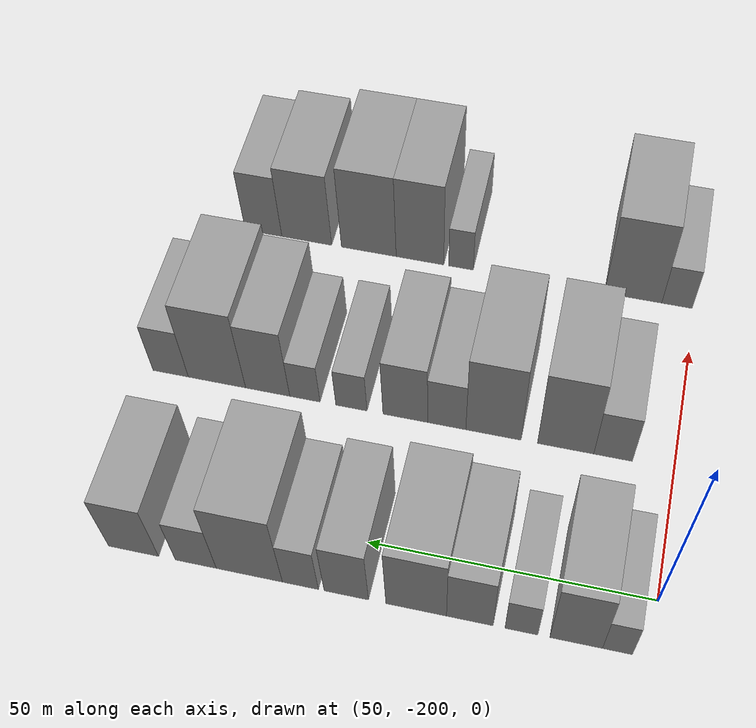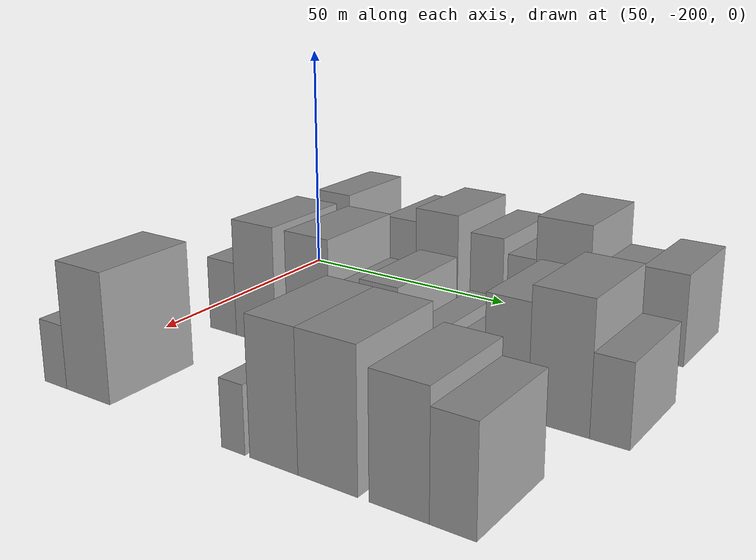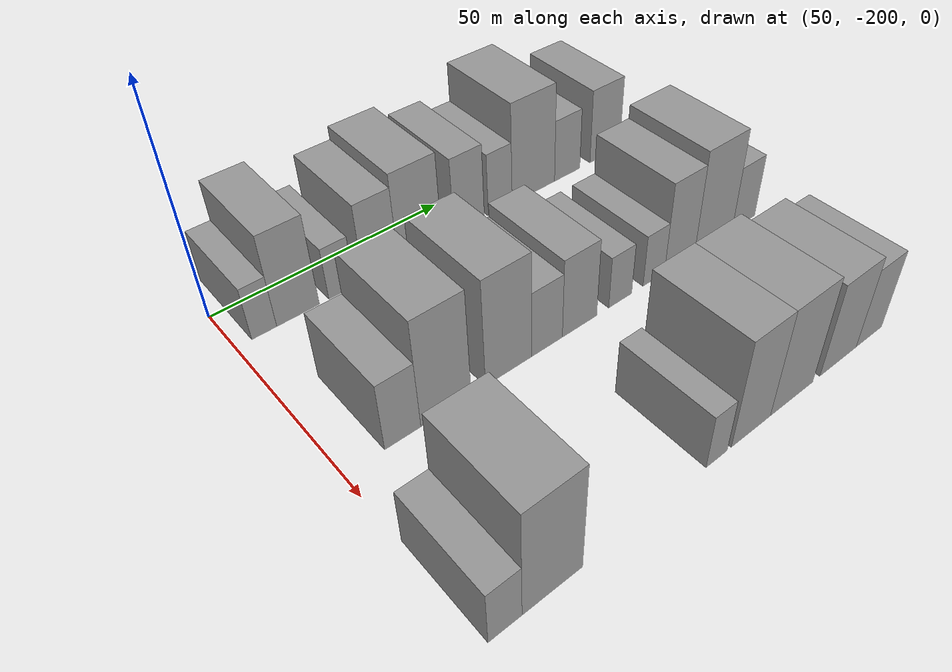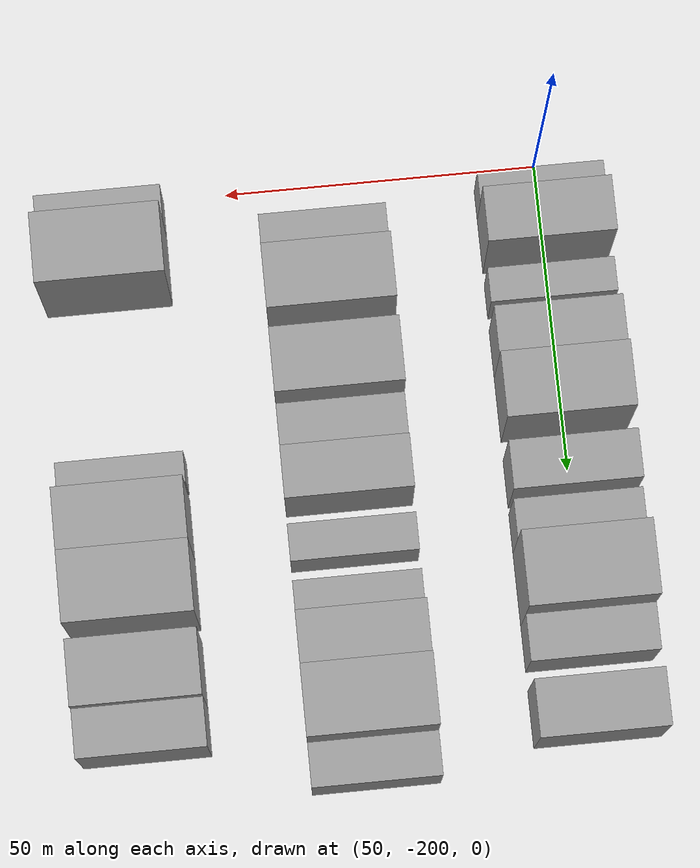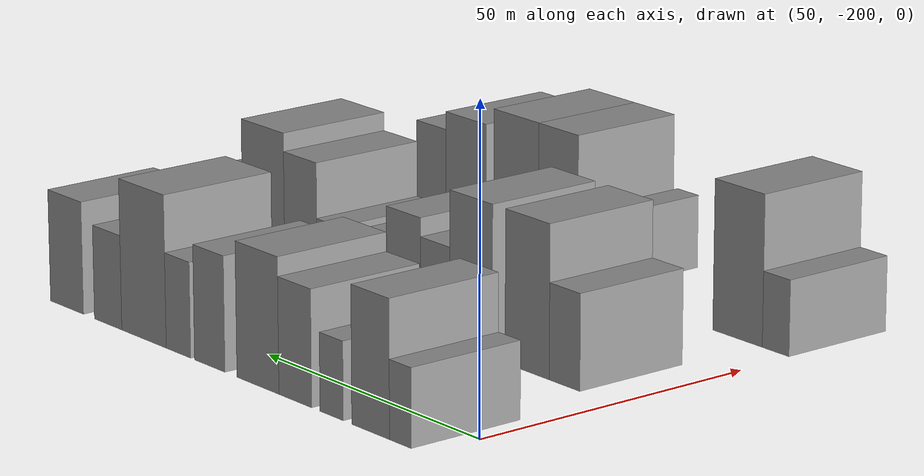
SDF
<sdf version="1.6">
 <world name="default">
  <model name="building_19">
   <static>1</static>
   <pose>50.0000 -194.4160 0 0.000000 0.000000 0.000000</pose>
   <link name="link">
    <pose>0 0 6.00 0 0 0</pose>
    <collision name="collision"><geometry><box><size>20.0000 4.9338 12.0000</size></box></geometry></collision>
    <visual name="visual">
     <cast_shadows>0</cast_shadows>
     <geometry><box><size>20.0000 4.9338 12.0000</size></box></geometry>
     <material>
      <script>
       <uri>model://grey_wall/materials/scripts</uri>
       <uri>model://grey_wall/materials/textures</uri>
       <name>vrc/grey_wall</name>
      </script>
     </material>
    </visual>
   </link>
  </model>
  <model name="building_20">
   <static>1</static>
   <pose>50.0000 -187.5790 0 0.000000 0.000000 0.000000</pose>
   <link name="link">
    <pose>0 0 10.50 0 0 0</pose>
    <collision name="collision"><geometry><box><size>20.0000 8.7402 21.0000</size></box></geometry></collision>
    <visual name="visual">
     <cast_shadows>0</cast_shadows>
     <geometry><box><size>20.0000 8.7402 21.0000</size></box></geometry>
     <material>
      <script>
       <uri>model://grey_wall/materials/scripts</uri>
       <uri>model://grey_wall/materials/textures</uri>
       <name>vrc/grey_wall</name>
      </script>
     </material>
    </visual>
   </link>
  </model>
  <model name="building_21">
   <static>1</static>
   <pose>50.0000 -178.4539 0 0.000000 0.000000 0.000000</pose>
   <link name="link">
    <pose>0 0 6.00 0 0 0</pose>
    <collision name="collision"><geometry><box><size>20.0000 5.5102 12.0000</size></box></geometry></collision>
    <visual name="visual">
     <cast_shadows>0</cast_shadows>
     <geometry><box><size>20.0000 5.5102 12.0000</size></box></geometry>
     <material>
      <script>
       <uri>model://grey_wall/materials/scripts</uri>
       <uri>model://grey_wall/materials/textures</uri>
       <name>vrc/grey_wall</name>
      </script>
     </material>
    </visual>
   </link>
  </model>
  <model name="building_22">
   <static>1</static>
   <pose>50.0000 -169.7559 0 0.000000 0.000000 0.000000</pose>
   <link name="link">
    <pose>0 0 9.00 0 0 0</pose>
    <collision name="collision"><geometry><box><size>20.0000 7.8857 18.0000</size></box></geometry></collision>
    <visual name="visual">
     <cast_shadows>0</cast_shadows>
     <geometry><box><size>20.0000 7.8857 18.0000</size></box></geometry>
     <material>
      <script>
       <uri>model://grey_wall/materials/scripts</uri>
       <uri>model://grey_wall/materials/textures</uri>
       <name>vrc/grey_wall</name>
      </script>
     </material>
    </visual>
   </link>
  </model>
  <model name="building_23">
   <static>1</static>
   <pose>50.0000 -160.6477 0 0.000000 0.000000 0.000000</pose>
   <link name="link">
    <pose>0 0 10.50 0 0 0</pose>
    <collision name="collision"><geometry><box><size>20.0000 10.3306 21.0000</size></box></geometry></collision>
    <visual name="visual">
     <cast_shadows>0</cast_shadows>
     <geometry><box><size>20.0000 10.3306 21.0000</size></box></geometry>
     <material>
      <script>
       <uri>model://grey_wall/materials/scripts</uri>
       <uri>model://grey_wall/materials/textures</uri>
       <name>vrc/grey_wall</name>
      </script>
     </material>
    </visual>
   </link>
  </model>
  <model name="building_24">
   <static>1</static>
   <pose>50.0000 -148.6512 0 0.000000 0.000000 0.000000</pose>
   <link name="link">
    <pose>0 0 9.00 0 0 0</pose>
    <collision name="collision"><geometry><box><size>20.0000 7.6624 18.0000</size></box></geometry></collision>
    <visual name="visual">
     <cast_shadows>0</cast_shadows>
     <geometry><box><size>20.0000 7.6624 18.0000</size></box></geometry>
     <material>
      <script>
       <uri>model://grey_wall/materials/scripts</uri>
       <uri>model://grey_wall/materials/textures</uri>
       <name>vrc/grey_wall</name>
      </script>
     </material>
    </visual>
   </link>
  </model>
  <model name="building_25">
   <static>1</static>
   <pose>50.0000 -140.6782 0 0.000000 0.000000 0.000000</pose>
   <link name="link">
    <pose>0 0 7.50 0 0 0</pose>
    <collision name="collision"><geometry><box><size>20.0000 6.2836 15.0000</size></box></geometry></collision>
    <visual name="visual">
     <cast_shadows>0</cast_shadows>
     <geometry><box><size>20.0000 6.2836 15.0000</size></box></geometry>
     <material>
      <script>
       <uri>model://grey_wall/materials/scripts</uri>
       <uri>model://grey_wall/materials/textures</uri>
       <name>vrc/grey_wall</name>
      </script>
     </material>
    </visual>
   </link>
  </model>
  <model name="building_26">
   <static>1</static>
   <pose>50.0000 -131.7145 0 0.000000 0.000000 0.000000</pose>
   <link name="link">
    <pose>0 0 12.00 0 0 0</pose>
    <collision name="collision"><geometry><box><size>20.0000 11.6438 24.0000</size></box></geometry></collision>
    <visual name="visual">
     <cast_shadows>0</cast_shadows>
     <geometry><box><size>20.0000 11.6438 24.0000</size></box></geometry>
     <material>
      <script>
       <uri>model://grey_wall/materials/scripts</uri>
       <uri>model://grey_wall/materials/textures</uri>
       <name>vrc/grey_wall</name>
      </script>
     </material>
    </visual>
   </link>
  </model>
  <model name="building_27">
   <static>1</static>
   <pose>50.0000 -122.2554 0 0.000000 0.000000 0.000000</pose>
   <link name="link">
    <pose>0 0 7.50 0 0 0</pose>
    <collision name="collision"><geometry><box><size>20.0000 7.2743 15.0000</size></box></geometry></collision>
    <visual name="visual">
     <cast_shadows>0</cast_shadows>
     <geometry><box><size>20.0000 7.2743 15.0000</size></box></geometry>
     <material>
      <script>
       <uri>model://grey_wall/materials/scripts</uri>
       <uri>model://grey_wall/materials/textures</uri>
       <name>vrc/grey_wall</name>
      </script>
     </material>
    </visual>
   </link>
  </model>
  <model name="building_28">
   <static>1</static>
   <pose>50.0000 -111.1314 0 0.000000 0.000000 0.000000</pose>
   <link name="link">
    <pose>0 0 9.00 0 0 0</pose>
    <collision name="collision"><geometry><box><size>20.0000 8.9738 18.0000</size></box></geometry></collision>
    <visual name="visual">
     <cast_shadows>0</cast_shadows>
     <geometry><box><size>20.0000 8.9738 18.0000</size></box></geometry>
     <material>
      <script>
       <uri>model://grey_wall/materials/scripts</uri>
       <uri>model://grey_wall/materials/textures</uri>
       <name>vrc/grey_wall</name>
      </script>
     </material>
    </visual>
   </link>
  </model>
  <model name="building_96">
   <static>1</static>
   <pose>85.0000 -188.9728 0 0.000000 0.000000 0.000000</pose>
   <link name="link">
    <pose>0 0 7.50 0 0 0</pose>
    <collision name="collision"><geometry><box><size>20.0000 6.9607 15.0000</size></box></geometry></collision>
    <visual name="visual">
     <cast_shadows>0</cast_shadows>
     <geometry><box><size>20.0000 6.9607 15.0000</size></box></geometry>
     <material>
      <script>
       <uri>model://grey_wall/materials/scripts</uri>
       <uri>model://grey_wall/materials/textures</uri>
       <name>vrc/grey_wall</name>
      </script>
     </material>
    </visual>
   </link>
  </model>
  <model name="building_97">
   <static>1</static>
   <pose>85.0000 -180.3932 0 0.000000 0.000000 0.000000</pose>
   <link name="link">
    <pose>0 0 12.00 0 0 0</pose>
    <collision name="collision"><geometry><box><size>20.0000 10.1984 24.0000</size></box></geometry></collision>
    <visual name="visual">
     <cast_shadows>0</cast_shadows>
     <geometry><box><size>20.0000 10.1984 24.0000</size></box></geometry>
     <material>
      <script>
       <uri>model://grey_wall/materials/scripts</uri>
       <uri>model://grey_wall/materials/textures</uri>
       <name>vrc/grey_wall</name>
      </script>
     </material>
    </visual>
   </link>
  </model>
  <model name="building_98">
   <static>1</static>
   <pose>85.0000 -167.2130 0 0.000000 0.000000 0.000000</pose>
   <link name="link">
    <pose>0 0 12.00 0 0 0</pose>
    <collision name="collision"><geometry><box><size>20.0000 10.1621 24.0000</size></box></geometry></collision>
    <visual name="visual">
     <cast_shadows>0</cast_shadows>
     <geometry><box><size>20.0000 10.1621 24.0000</size></box></geometry>
     <material>
      <script>
       <uri>model://grey_wall/materials/scripts</uri>
       <uri>model://grey_wall/materials/textures</uri>
       <name>vrc/grey_wall</name>
      </script>
     </material>
    </visual>
   </link>
  </model>
  <model name="building_99">
   <static>1</static>
   <pose>85.0000 -158.5854 0 0.000000 0.000000 0.000000</pose>
   <link name="link">
    <pose>0 0 7.50 0 0 0</pose>
    <collision name="collision"><geometry><box><size>20.0000 7.0930 15.0000</size></box></geometry></collision>
    <visual name="visual">
     <cast_shadows>0</cast_shadows>
     <geometry><box><size>20.0000 7.0930 15.0000</size></box></geometry>
     <material>
      <script>
       <uri>model://grey_wall/materials/scripts</uri>
       <uri>model://grey_wall/materials/textures</uri>
       <name>vrc/grey_wall</name>
      </script>
     </material>
    </visual>
   </link>
  </model>
  <model name="building_100">
   <static>1</static>
   <pose>85.0000 -150.8877 0 0.000000 0.000000 0.000000</pose>
   <link name="link">
    <pose>0 0 9.00 0 0 0</pose>
    <collision name="collision"><geometry><box><size>20.0000 8.3025 18.0000</size></box></geometry></collision>
    <visual name="visual">
     <cast_shadows>0</cast_shadows>
     <geometry><box><size>20.0000 8.3025 18.0000</size></box></geometry>
     <material>
      <script>
       <uri>model://grey_wall/materials/scripts</uri>
       <uri>model://grey_wall/materials/textures</uri>
       <name>vrc/grey_wall</name>
      </script>
     </material>
    </visual>
   </link>
  </model>
  <model name="building_101">
   <static>1</static>
   <pose>85.0000 -140.7984 0 0.000000 0.000000 0.000000</pose>
   <link name="link">
    <pose>0 0 6.00 0 0 0</pose>
    <collision name="collision"><geometry><box><size>20.0000 5.8761 12.0000</size></box></geometry></collision>
    <visual name="visual">
     <cast_shadows>0</cast_shadows>
     <geometry><box><size>20.0000 5.8761 12.0000</size></box></geometry>
     <material>
      <script>
       <uri>model://grey_wall/materials/scripts</uri>
       <uri>model://grey_wall/materials/textures</uri>
       <name>vrc/grey_wall</name>
      </script>
     </material>
    </visual>
   </link>
  </model>
  <model name="building_102">
   <static>1</static>
   <pose>85.0000 -131.9815 0 0.000000 0.000000 0.000000</pose>
   <link name="link">
    <pose>0 0 6.00 0 0 0</pose>
    <collision name="collision"><geometry><box><size>20.0000 5.7577 12.0000</size></box></geometry></collision>
    <visual name="visual">
     <cast_shadows>0</cast_shadows>
     <geometry><box><size>20.0000 5.7577 12.0000</size></box></geometry>
     <material>
      <script>
       <uri>model://grey_wall/materials/scripts</uri>
       <uri>model://grey_wall/materials/textures</uri>
       <name>vrc/grey_wall</name>
      </script>
     </material>
    </visual>
   </link>
  </model>
  <model name="building_103">
   <static>1</static>
   <pose>85.0000 -124.8786 0 0.000000 0.000000 0.000000</pose>
   <link name="link">
    <pose>0 0 10.50 0 0 0</pose>
    <collision name="collision"><geometry><box><size>20.0000 8.4482 21.0000</size></box></geometry></collision>
    <visual name="visual">
     <cast_shadows>0</cast_shadows>
     <geometry><box><size>20.0000 8.4482 21.0000</size></box></geometry>
     <material>
      <script>
       <uri>model://grey_wall/materials/scripts</uri>
       <uri>model://grey_wall/materials/textures</uri>
       <name>vrc/grey_wall</name>
      </script>
     </material>
    </visual>
   </link>
  </model>
  <model name="building_104">
   <static>1</static>
   <pose>85.0000 -115.1177 0 0.000000 0.000000 0.000000</pose>
   <link name="link">
    <pose>0 0 12.00 0 0 0</pose>
    <collision name="collision"><geometry><box><size>20.0000 11.0736 24.0000</size></box></geometry></collision>
    <visual name="visual">
     <cast_shadows>0</cast_shadows>
     <geometry><box><size>20.0000 11.0736 24.0000</size></box></geometry>
     <material>
      <script>
       <uri>model://grey_wall/materials/scripts</uri>
       <uri>model://grey_wall/materials/textures</uri>
       <name>vrc/grey_wall</name>
      </script>
     </material>
    </visual>
   </link>
  </model>
  <model name="building_105">
   <static>1</static>
   <pose>85.0000 -106.1394 0 0.000000 0.000000 0.000000</pose>
   <link name="link">
    <pose>0 0 7.50 0 0 0</pose>
    <collision name="collision"><geometry><box><size>20.0000 6.8830 15.0000</size></box></geometry></collision>
    <visual name="visual">
     <cast_shadows>0</cast_shadows>
     <geometry><box><size>20.0000 6.8830 15.0000</size></box></geometry>
     <material>
      <script>
       <uri>model://grey_wall/materials/scripts</uri>
       <uri>model://grey_wall/materials/textures</uri>
       <name>vrc/grey_wall</name>
      </script>
     </material>
    </visual>
   </link>
  </model>
  <model name="building_167">
   <static>1</static>
   <pose>120.0000 -196.6678 0 0.000000 0.000000 0.000000</pose>
   <link name="link">
    <pose>0 0 6.00 0 0 0</pose>
    <collision name="collision"><geometry><box><size>20.0000 5.8931 12.0000</size></box></geometry></collision>
    <visual name="visual">
     <cast_shadows>0</cast_shadows>
     <geometry><box><size>20.0000 5.8931 12.0000</size></box></geometry>
     <material>
      <script>
       <uri>model://grey_wall/materials/scripts</uri>
       <uri>model://grey_wall/materials/textures</uri>
       <name>vrc/grey_wall</name>
      </script>
     </material>
    </visual>
   </link>
  </model>
  <model name="building_168">
   <static>1</static>
   <pose>120.0000 -188.1610 0 0.000000 0.000000 0.000000</pose>
   <link name="link">
    <pose>0 0 12.00 0 0 0</pose>
    <collision name="collision"><geometry><box><size>20.0000 11.1206 24.0000</size></box></geometry></collision>
    <visual name="visual">
     <cast_shadows>0</cast_shadows>
     <geometry><box><size>20.0000 11.1206 24.0000</size></box></geometry>
     <material>
      <script>
       <uri>model://grey_wall/materials/scripts</uri>
       <uri>model://grey_wall/materials/textures</uri>
       <name>vrc/grey_wall</name>
      </script>
     </material>
    </visual>
   </link>
  </model>
  <model name="building_169">
   <static>1</static>
   <pose>120.0000 -154.2214 0 0.000000 0.000000 0.000000</pose>
   <link name="link">
    <pose>0 0 6.00 0 0 0</pose>
    <collision name="collision"><geometry><box><size>20.0000 4.9195 12.0000</size></box></geometry></collision>
    <visual name="visual">
     <cast_shadows>0</cast_shadows>
     <geometry><box><size>20.0000 4.9195 12.0000</size></box></geometry>
     <material>
      <script>
       <uri>model://grey_wall/materials/scripts</uri>
       <uri>model://grey_wall/materials/textures</uri>
       <name>vrc/grey_wall</name>
      </script>
     </material>
    </visual>
   </link>
  </model>
  <model name="building_170">
   <static>1</static>
   <pose>120.0000 -145.9594 0 0.000000 0.000000 0.000000</pose>
   <link name="link">
    <pose>0 0 12.00 0 0 0</pose>
    <collision name="collision"><geometry><box><size>20.0000 9.6044 24.0000</size></box></geometry></collision>
    <visual name="visual">
     <cast_shadows>0</cast_shadows>
     <geometry><box><size>20.0000 9.6044 24.0000</size></box></geometry>
     <material>
      <script>
       <uri>model://grey_wall/materials/scripts</uri>
       <uri>model://grey_wall/materials/textures</uri>
       <name>vrc/grey_wall</name>
      </script>
     </material>
    </visual>
   </link>
  </model>
  <model name="building_171">
   <static>1</static>
   <pose>120.0000 -135.5880 0 0.000000 0.000000 0.000000</pose>
   <link name="link">
    <pose>0 0 12.00 0 0 0</pose>
    <collision name="collision"><geometry><box><size>20.0000 11.1384 24.0000</size></box></geometry></collision>
    <visual name="visual">
     <cast_shadows>0</cast_shadows>
     <geometry><box><size>20.0000 11.1384 24.0000</size></box></geometry>
     <material>
      <script>
       <uri>model://grey_wall/materials/scripts</uri>
       <uri>model://grey_wall/materials/textures</uri>
       <name>vrc/grey_wall</name>
      </script>
     </material>
    </visual>
   </link>
  </model>
  <model name="building_172">
   <static>1</static>
   <pose>120.0000 -122.8809 0 0.000000 0.000000 0.000000</pose>
   <link name="link">
    <pose>0 0 10.50 0 0 0</pose>
    <collision name="collision"><geometry><box><size>20.0000 10.2759 21.0000</size></box></geometry></collision>
    <visual name="visual">
     <cast_shadows>0</cast_shadows>
     <geometry><box><size>20.0000 10.2759 21.0000</size></box></geometry>
     <material>
      <script>
       <uri>model://grey_wall/materials/scripts</uri>
       <uri>model://grey_wall/materials/textures</uri>
       <name>vrc/grey_wall</name>
      </script>
     </material>
    </visual>
   </link>
  </model>
  <model name="building_173">
   <static>1</static>
   <pose>120.0000 -113.9500 0 0.000000 0.000000 0.000000</pose>
   <link name="link">
    <pose>0 0 9.00 0 0 0</pose>
    <collision name="collision"><geometry><box><size>20.0000 7.5859 18.0000</size></box></geometry></collision>
    <visual name="visual">
     <cast_shadows>0</cast_shadows>
     <geometry><box><size>20.0000 7.5859 18.0000</size></box></geometry>
     <material>
      <script>
       <uri>model://grey_wall/materials/scripts</uri>
       <uri>model://grey_wall/materials/textures</uri>
       <name>vrc/grey_wall</name>
      </script>
     </material>
    </visual>
   </link>
  </model>
 </world>
</sdf>
